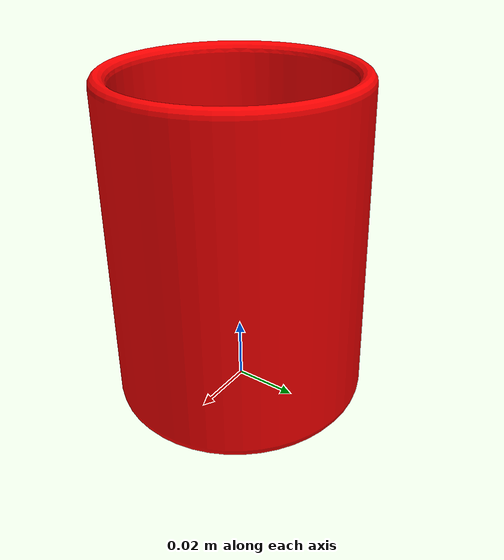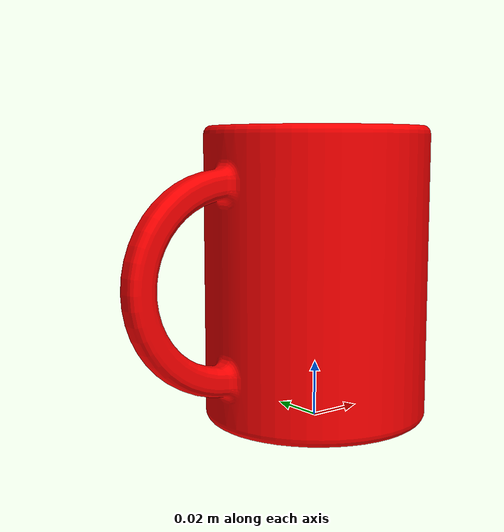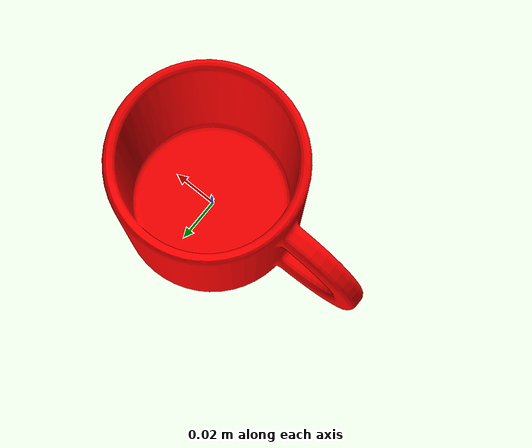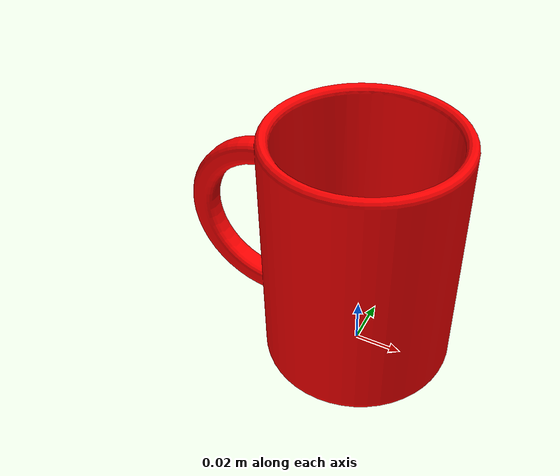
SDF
<?xml version="1.0"?>
<sdf version="1.11">
  <model name="cup">
    <!--Publishes the model pose for controller use later-->
    <plugin filename="gz-sim-pose-publisher-system" name="gz::sim::systems::PosePublisher">
      <publish_model_pose>true</publish_model_pose>
      <publish_link_pose>false</publish_link_pose>
      <use_pose_vector_msg>true</use_pose_vector_msg>
      <update_frequency>30</update_frequency>
    </plugin>

    <link name="link">
      <inertial auto="true"/>

      <collision name="collision">
        <density>1220</density>
        <geometry>
          <mesh optimization="convex_decomposition">
            <uri>model://cup/rbe501_mug.stl</uri>
          </mesh>
        </geometry>
      </collision>

      <visual name="visual">
        <material>
          <ambient>1 0 0 1</ambient>
          <diffuse>1 0 0 1 </diffuse>
        </material>

        <geometry>
          <mesh>
            <uri>model://cup/rbe501_mug.stl</uri>
          </mesh>
        </geometry>
      </visual>
    </link>

  </model>
</sdf>
